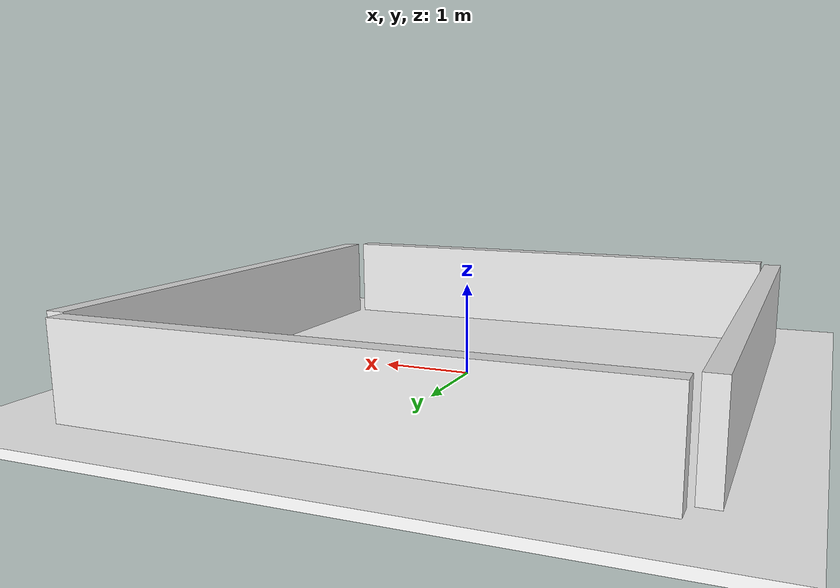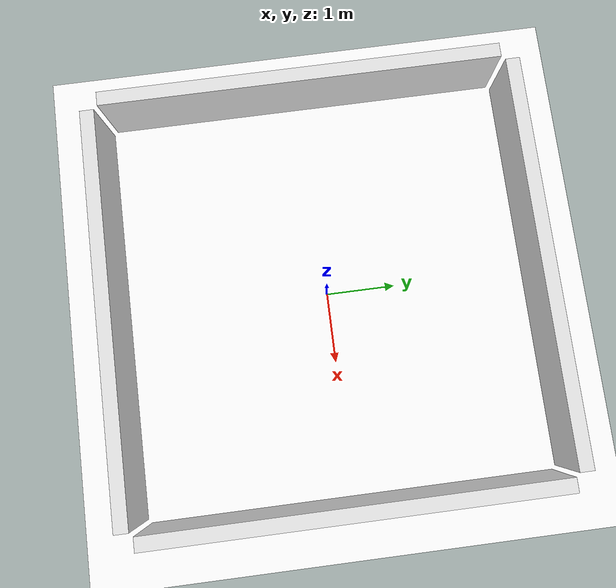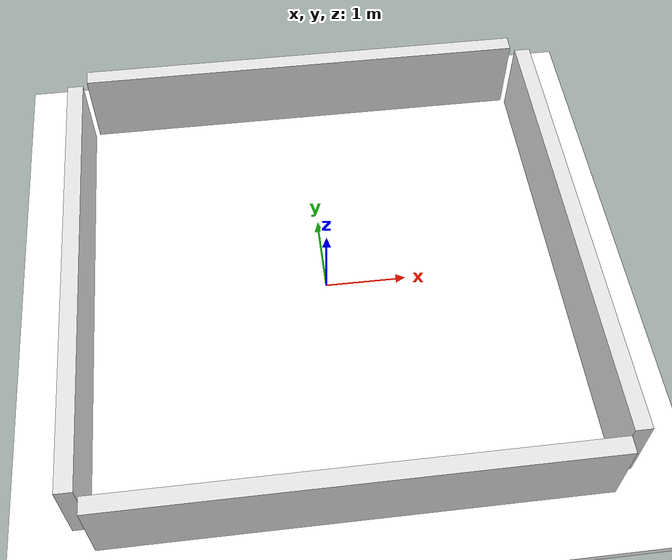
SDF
<?xml version="1.0"?>
<sdf version="1.6">
  <world name="walls_world">
    <scene>
      <ambient>0.8 0.8 0.8 1</ambient>
      <background>1 1 1 1</background>
    </scene>

    <light name="sun" type="directional">
      <pose>0 0 10 0 0 0</pose>
      <diffuse>0.8 0.8 0.8 1</diffuse>
      <specular>0.2 0.2 0.2 1</specular>
      <direction>-0.5 0.1 -0.9</direction>
    </light>

    <model name="ground_plane">
      <static>true</static>
      <link name="ground_link">
        <pose>0 0 -0.05 0 0 0</pose>
        <collision name="collision">
          <geometry>
            <box>
              <size>20 20 0.1</size>
            </box>
          </geometry>
        </collision>
        <visual name="visual">
          <geometry>
            <box>
              <size>20 20 0.1</size>
            </box>
          </geometry>
          <material>
            <ambient>1 1 1 1</ambient>
            <diffuse>1 1 1 1</diffuse>
          </material>
        </visual>
      </link>
    </model>

    <model name="front_wall">
      <static>false</static>
      <pose>3 0 0.5 0 0 0</pose>
      <link name="wall_link">
        <inertial>
          <mass>3</mass>
          <inertia>
            <ixx>8.3725</ixx>
            <iyy>0.26</iyy>
            <izz>8.1325</izz>
            <ixy>0</ixy>
            <ixz>0</ixz>
            <iyz>0</iyz>
          </inertia>
        </inertial>
        <collision name="collision">
          <geometry>
            <box>
              <size>0.2 5.7 1</size>
            </box>
          </geometry>
        </collision>
        <visual name="visual">
          <geometry>
            <box>
              <size>0.2 5.7 1</size>
            </box>
          </geometry>
          <material>
            <ambient>0.9 0.9 0.9 1</ambient>
            <diffuse>0.9 0.9 0.9 1</diffuse>
          </material>
        </visual>
      </link>
    </model>

    <model name="back_wall">
      <static>false</static>
      <pose>-3 0 0.5 0 0 0</pose>
      <link name="wall_link">
        <inertial>
          <mass>3</mass>
          <inertia>
            <ixx>8.3725</ixx>
            <iyy>0.26</iyy>
            <izz>8.1325</izz>
            <ixy>0</ixy>
            <ixz>0</ixz>
            <iyz>0</iyz>
          </inertia>
        </inertial>
        <collision name="collision">
          <geometry>
            <box>
              <size>0.2 5.7 1</size>
            </box>
          </geometry>
        </collision>
        <visual name="visual">
          <geometry>
            <box>
              <size>0.2 5.7 1</size>
            </box>
          </geometry>
          <material>
            <ambient>0.9 0.9 0.9 1</ambient>
            <diffuse>0.9 0.9 0.9 1</diffuse>
          </material>
        </visual>
      </link>
    </model>

    <model name="left_wall">
      <static>false</static>
      <pose>0 3 0.5 0 0 0</pose>
      <link name="wall_link">
        <inertial>
          <mass>3</mass>
          <inertia>
            <ixx>0.26</ixx>
            <iyy>8.3725</iyy>
            <izz>8.1325</izz>
            <ixy>0</ixy>
            <ixz>0</ixz>
            <iyz>0</iyz>
          </inertia>
        </inertial>
        <collision name="collision">
          <geometry>
            <box>
              <size>5.7 0.2 1</size>
            </box>
          </geometry>
        </collision>
        <visual name="visual">
          <geometry>
            <box>
              <size>5.7 0.2 1</size>
            </box>
          </geometry>
          <material>
            <ambient>0.9 0.9 0.9 1</ambient>
            <diffuse>0.9 0.9 0.9 1</diffuse>
          </material>
        </visual>
      </link>
    </model>

    <model name="right_wall">
      <static>false</static>
      <pose>0 -3 0.5 0 0 0</pose>
      <link name="wall_link">
        <inertial>
          <mass>3</mass>
          <inertia>
            <ixx>0.26</ixx>
            <iyy>8.3725</iyy>
            <izz>8.1325</izz>
            <ixy>0</ixy>
            <ixz>0</ixz>
            <iyz>0</iyz>
          </inertia>
        </inertial>
        <collision name="collision">
          <geometry>
            <box>
              <size>5.7 0.2 1</size>
            </box>
          </geometry>
        </collision>
        <visual name="visual">
          <geometry>
            <box>
              <size>5.7 0.2 1</size>
            </box>
          </geometry>
          <material>
            <ambient>0.9 0.9 0.9 1</ambient>
            <diffuse>0.9 0.9 0.9 1</diffuse>
          </material>
        </visual>
      </link>
    </model>
  </world>
</sdf>
